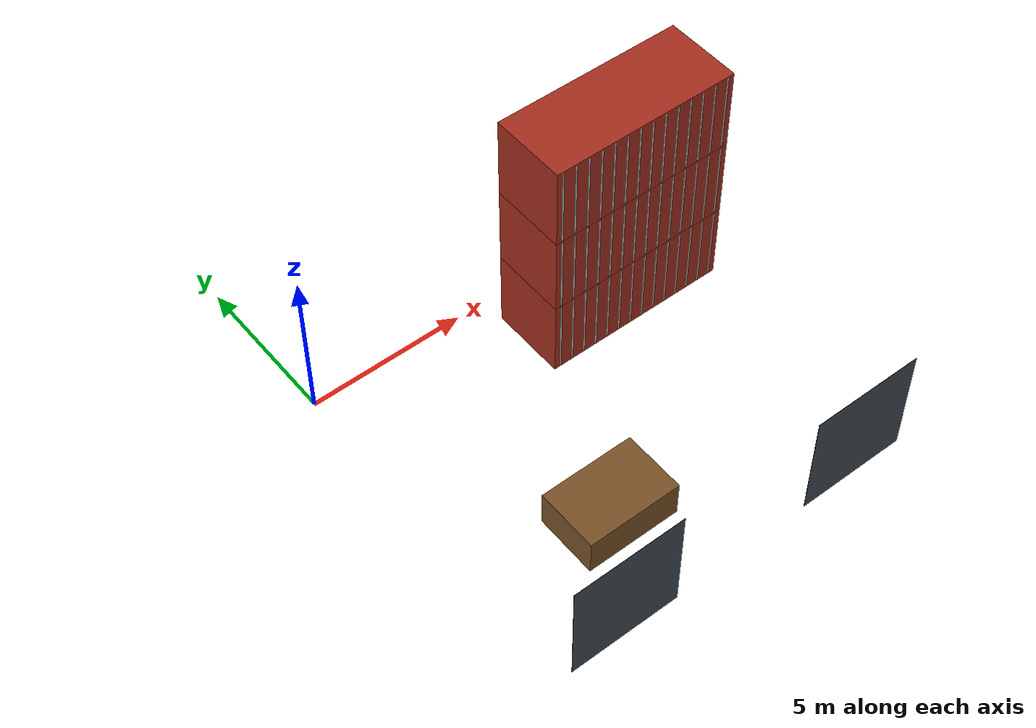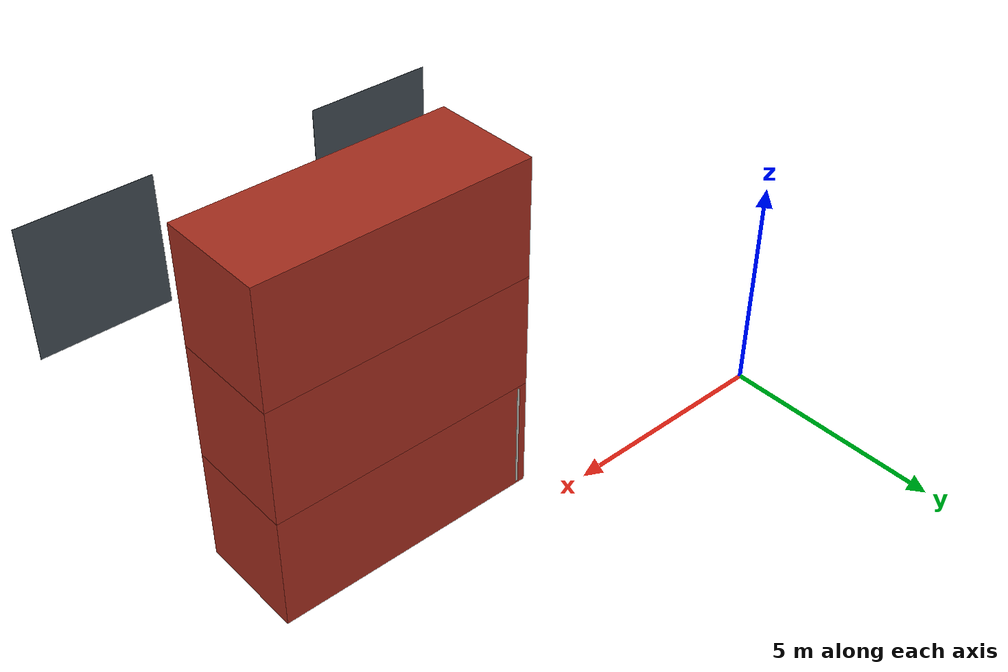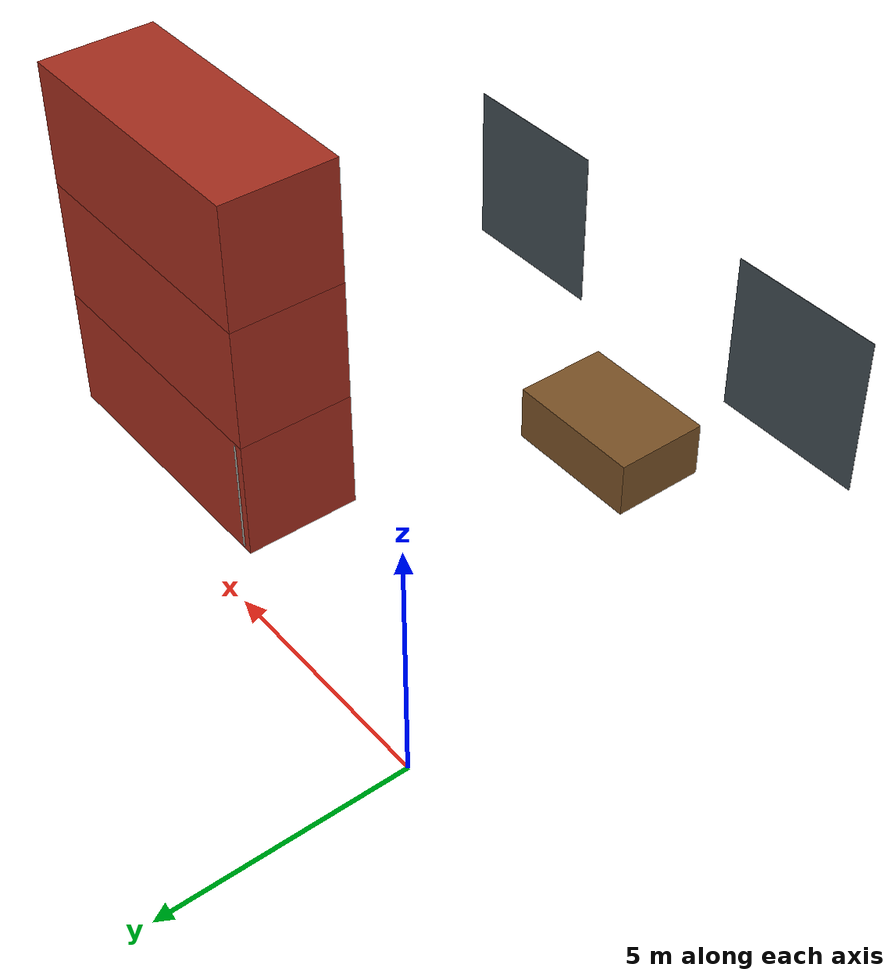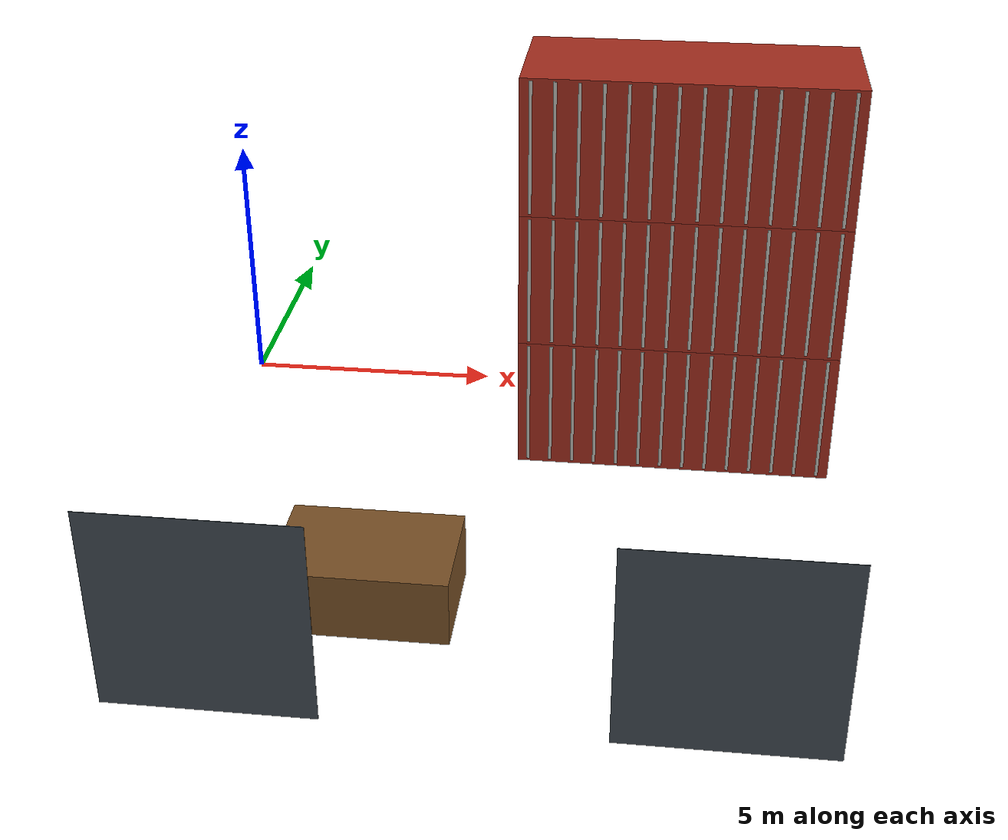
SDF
<sdf version="1.9">
 <world name="iris_mppi_industrial_yard">
  <model name="south_loading_door_2">
   <static>true</static>
   <pose>2 -10.995 1.8 0 0 0</pose>
   <link name="body">
    <visual name="visual">
     <geometry><box><size>3.5 0.01 3.6</size></box></geometry>
     <material><ambient>.25 .29 .32 1</ambient><diffuse>.25 .29 .32 1</diffuse></material>
    </visual>
   </link>
  </model>
  <model name="south_loading_door_10">
   <static>true</static>
   <pose>10 -10.995 1.8 0 0 0</pose>
   <link name="body">
    <visual name="visual">
     <geometry><box><size>3.5 0.01 3.6</size></box></geometry>
     <material><ambient>.25 .29 .32 1</ambient><diffuse>.25 .29 .32 1</diffuse></material>
    </visual>
   </link>
  </model>
  <model name="container_0_0">
   <static>true</static>
   <pose>9 -2 1.3 0 0 0</pose>
   <link name="body">
    <collision name="collision"><geometry><box><size>6 2.44 2.6</size></box></geometry></collision>
    <visual name="visual">
     <geometry><box><size>6 2.44 2.6</size></box></geometry>
     <material><ambient>.65 .18 .12 1</ambient><diffuse>.65 .18 .12 1</diffuse></material>
    </visual>
   </link>
  </model>
  <model name="rib_0_0_0_-1">
   <static>true</static>
   <pose>6.2 -3.218 1.3 0 0 0</pose>
   <link name="body">
    <visual name="visual">
     <geometry><box><size>0.06 0.008 2.5</size></box></geometry>
     <material><ambient>.75 .75 .72 1</ambient><diffuse>.75 .75 .72 1</diffuse></material>
    </visual>
   </link>
  </model>
  <model name="rib_0_0_0_1">
   <static>true</static>
   <pose>6.2 -0.782 1.3 0 0 0</pose>
   <link name="body">
    <visual name="visual">
     <geometry><box><size>0.06 0.008 2.5</size></box></geometry>
     <material><ambient>.75 .75 .72 1</ambient><diffuse>.75 .75 .72 1</diffuse></material>
    </visual>
   </link>
  </model>
  <model name="rib_0_0_1_-1">
   <static>true</static>
   <pose>6.63 -3.218 1.3 0 0 0</pose>
   <link name="body">
    <visual name="visual">
     <geometry><box><size>0.06 0.008 2.5</size></box></geometry>
     <material><ambient>.75 .75 .72 1</ambient><diffuse>.75 .75 .72 1</diffuse></material>
    </visual>
   </link>
  </model>
  <model name="rib_0_0_2_-1">
   <static>true</static>
   <pose>7.0600000000000005 -3.218 1.3 0 0 0</pose>
   <link name="body">
    <visual name="visual">
     <geometry><box><size>0.06 0.008 2.5</size></box></geometry>
     <material><ambient>.75 .75 .72 1</ambient><diffuse>.75 .75 .72 1</diffuse></material>
    </visual>
   </link>
  </model>
  <model name="rib_0_0_3_-1">
   <static>true</static>
   <pose>7.49 -3.218 1.3 0 0 0</pose>
   <link name="body">
    <visual name="visual">
     <geometry><box><size>0.06 0.008 2.5</size></box></geometry>
     <material><ambient>.75 .75 .72 1</ambient><diffuse>.75 .75 .72 1</diffuse></material>
    </visual>
   </link>
  </model>
  <model name="rib_0_0_4_-1">
   <static>true</static>
   <pose>7.92 -3.218 1.3 0 0 0</pose>
   <link name="body">
    <visual name="visual">
     <geometry><box><size>0.06 0.008 2.5</size></box></geometry>
     <material><ambient>.75 .75 .72 1</ambient><diffuse>.75 .75 .72 1</diffuse></material>
    </visual>
   </link>
  </model>
  <model name="rib_0_0_5_-1">
   <static>true</static>
   <pose>8.35 -3.218 1.3 0 0 0</pose>
   <link name="body">
    <visual name="visual">
     <geometry><box><size>0.06 0.008 2.5</size></box></geometry>
     <material><ambient>.75 .75 .72 1</ambient><diffuse>.75 .75 .72 1</diffuse></material>
    </visual>
   </link>
  </model>
  <model name="rib_0_0_6_-1">
   <static>true</static>
   <pose>8.780000000000001 -3.218 1.3 0 0 0</pose>
   <link name="body">
    <visual name="visual">
     <geometry><box><size>0.06 0.008 2.5</size></box></geometry>
     <material><ambient>.75 .75 .72 1</ambient><diffuse>.75 .75 .72 1</diffuse></material>
    </visual>
   </link>
  </model>
  <model name="rib_0_0_7_-1">
   <static>true</static>
   <pose>9.21 -3.218 1.3 0 0 0</pose>
   <link name="body">
    <visual name="visual">
     <geometry><box><size>0.06 0.008 2.5</size></box></geometry>
     <material><ambient>.75 .75 .72 1</ambient><diffuse>.75 .75 .72 1</diffuse></material>
    </visual>
   </link>
  </model>
  <model name="rib_0_0_8_-1">
   <static>true</static>
   <pose>9.64 -3.218 1.3 0 0 0</pose>
   <link name="body">
    <visual name="visual">
     <geometry><box><size>0.06 0.008 2.5</size></box></geometry>
     <material><ambient>.75 .75 .72 1</ambient><diffuse>.75 .75 .72 1</diffuse></material>
    </visual>
   </link>
  </model>
  <model name="rib_0_0_9_-1">
   <static>true</static>
   <pose>10.07 -3.218 1.3 0 0 0</pose>
   <link name="body">
    <visual name="visual">
     <geometry><box><size>0.06 0.008 2.5</size></box></geometry>
     <material><ambient>.75 .75 .72 1</ambient><diffuse>.75 .75 .72 1</diffuse></material>
    </visual>
   </link>
  </model>
  <model name="rib_0_0_10_-1">
   <static>true</static>
   <pose>10.5 -3.218 1.3 0 0 0</pose>
   <link name="body">
    <visual name="visual">
     <geometry><box><size>0.06 0.008 2.5</size></box></geometry>
     <material><ambient>.75 .75 .72 1</ambient><diffuse>.75 .75 .72 1</diffuse></material>
    </visual>
   </link>
  </model>
  <model name="rib_0_0_11_-1">
   <static>true</static>
   <pose>10.93 -3.218 1.3 0 0 0</pose>
   <link name="body">
    <visual name="visual">
     <geometry><box><size>0.06 0.008 2.5</size></box></geometry>
     <material><ambient>.75 .75 .72 1</ambient><diffuse>.75 .75 .72 1</diffuse></material>
    </visual>
   </link>
  </model>
  <model name="rib_0_0_12_-1">
   <static>true</static>
   <pose>11.36 -3.218 1.3 0 0 0</pose>
   <link name="body">
    <visual name="visual">
     <geometry><box><size>0.06 0.008 2.5</size></box></geometry>
     <material><ambient>.75 .75 .72 1</ambient><diffuse>.75 .75 .72 1</diffuse></material>
    </visual>
   </link>
  </model>
  <model name="rib_0_0_13_-1">
   <static>true</static>
   <pose>11.79 -3.218 1.3 0 0 0</pose>
   <link name="body">
    <visual name="visual">
     <geometry><box><size>0.06 0.008 2.5</size></box></geometry>
     <material><ambient>.75 .75 .72 1</ambient><diffuse>.75 .75 .72 1</diffuse></material>
    </visual>
   </link>
  </model>
  <model name="container_0_1">
   <static>true</static>
   <pose>9 -2 3.9000000000000004 0 0 0</pose>
   <link name="body">
    <collision name="collision"><geometry><box><size>6 2.44 2.6</size></box></geometry></collision>
    <visual name="visual">
     <geometry><box><size>6 2.44 2.6</size></box></geometry>
     <material><ambient>.65 .18 .12 1</ambient><diffuse>.65 .18 .12 1</diffuse></material>
    </visual>
   </link>
  </model>
  <model name="rib_0_1_0_-1">
   <static>true</static>
   <pose>6.2 -3.218 3.9000000000000004 0 0 0</pose>
   <link name="body">
    <visual name="visual">
     <geometry><box><size>0.06 0.008 2.5</size></box></geometry>
     <material><ambient>.75 .75 .72 1</ambient><diffuse>.75 .75 .72 1</diffuse></material>
    </visual>
   </link>
  </model>
  <model name="rib_0_1_1_-1">
   <static>true</static>
   <pose>6.63 -3.218 3.9000000000000004 0 0 0</pose>
   <link name="body">
    <visual name="visual">
     <geometry><box><size>0.06 0.008 2.5</size></box></geometry>
     <material><ambient>.75 .75 .72 1</ambient><diffuse>.75 .75 .72 1</diffuse></material>
    </visual>
   </link>
  </model>
  <model name="rib_0_1_2_-1">
   <static>true</static>
   <pose>7.0600000000000005 -3.218 3.9000000000000004 0 0 0</pose>
   <link name="body">
    <visual name="visual">
     <geometry><box><size>0.06 0.008 2.5</size></box></geometry>
     <material><ambient>.75 .75 .72 1</ambient><diffuse>.75 .75 .72 1</diffuse></material>
    </visual>
   </link>
  </model>
  <model name="rib_0_1_3_-1">
   <static>true</static>
   <pose>7.49 -3.218 3.9000000000000004 0 0 0</pose>
   <link name="body">
    <visual name="visual">
     <geometry><box><size>0.06 0.008 2.5</size></box></geometry>
     <material><ambient>.75 .75 .72 1</ambient><diffuse>.75 .75 .72 1</diffuse></material>
    </visual>
   </link>
  </model>
  <model name="rib_0_1_4_-1">
   <static>true</static>
   <pose>7.92 -3.218 3.9000000000000004 0 0 0</pose>
   <link name="body">
    <visual name="visual">
     <geometry><box><size>0.06 0.008 2.5</size></box></geometry>
     <material><ambient>.75 .75 .72 1</ambient><diffuse>.75 .75 .72 1</diffuse></material>
    </visual>
   </link>
  </model>
  <model name="rib_0_1_5_-1">
   <static>true</static>
   <pose>8.35 -3.218 3.9000000000000004 0 0 0</pose>
   <link name="body">
    <visual name="visual">
     <geometry><box><size>0.06 0.008 2.5</size></box></geometry>
     <material><ambient>.75 .75 .72 1</ambient><diffuse>.75 .75 .72 1</diffuse></material>
    </visual>
   </link>
  </model>
  <model name="rib_0_1_6_-1">
   <static>true</static>
   <pose>8.780000000000001 -3.218 3.9000000000000004 0 0 0</pose>
   <link name="body">
    <visual name="visual">
     <geometry><box><size>0.06 0.008 2.5</size></box></geometry>
     <material><ambient>.75 .75 .72 1</ambient><diffuse>.75 .75 .72 1</diffuse></material>
    </visual>
   </link>
  </model>
  <model name="rib_0_1_7_-1">
   <static>true</static>
   <pose>9.21 -3.218 3.9000000000000004 0 0 0</pose>
   <link name="body">
    <visual name="visual">
     <geometry><box><size>0.06 0.008 2.5</size></box></geometry>
     <material><ambient>.75 .75 .72 1</ambient><diffuse>.75 .75 .72 1</diffuse></material>
    </visual>
   </link>
  </model>
  <model name="rib_0_1_8_-1">
   <static>true</static>
   <pose>9.64 -3.218 3.9000000000000004 0 0 0</pose>
   <link name="body">
    <visual name="visual">
     <geometry><box><size>0.06 0.008 2.5</size></box></geometry>
     <material><ambient>.75 .75 .72 1</ambient><diffuse>.75 .75 .72 1</diffuse></material>
    </visual>
   </link>
  </model>
  <model name="rib_0_1_9_-1">
   <static>true</static>
   <pose>10.07 -3.218 3.9000000000000004 0 0 0</pose>
   <link name="body">
    <visual name="visual">
     <geometry><box><size>0.06 0.008 2.5</size></box></geometry>
     <material><ambient>.75 .75 .72 1</ambient><diffuse>.75 .75 .72 1</diffuse></material>
    </visual>
   </link>
  </model>
  <model name="rib_0_1_10_-1">
   <static>true</static>
   <pose>10.5 -3.218 3.9000000000000004 0 0 0</pose>
   <link name="body">
    <visual name="visual">
     <geometry><box><size>0.06 0.008 2.5</size></box></geometry>
     <material><ambient>.75 .75 .72 1</ambient><diffuse>.75 .75 .72 1</diffuse></material>
    </visual>
   </link>
  </model>
  <model name="rib_0_1_11_-1">
   <static>true</static>
   <pose>10.93 -3.218 3.9000000000000004 0 0 0</pose>
   <link name="body">
    <visual name="visual">
     <geometry><box><size>0.06 0.008 2.5</size></box></geometry>
     <material><ambient>.75 .75 .72 1</ambient><diffuse>.75 .75 .72 1</diffuse></material>
    </visual>
   </link>
  </model>
  <model name="rib_0_1_12_-1">
   <static>true</static>
   <pose>11.36 -3.218 3.9000000000000004 0 0 0</pose>
   <link name="body">
    <visual name="visual">
     <geometry><box><size>0.06 0.008 2.5</size></box></geometry>
     <material><ambient>.75 .75 .72 1</ambient><diffuse>.75 .75 .72 1</diffuse></material>
    </visual>
   </link>
  </model>
  <model name="rib_0_1_13_-1">
   <static>true</static>
   <pose>11.79 -3.218 3.9000000000000004 0 0 0</pose>
   <link name="body">
    <visual name="visual">
     <geometry><box><size>0.06 0.008 2.5</size></box></geometry>
     <material><ambient>.75 .75 .72 1</ambient><diffuse>.75 .75 .72 1</diffuse></material>
    </visual>
   </link>
  </model>
  <model name="container_0_2">
   <static>true</static>
   <pose>9 -2 6.5 0 0 0</pose>
   <link name="body">
    <collision name="collision"><geometry><box><size>6 2.44 2.6</size></box></geometry></collision>
    <visual name="visual">
     <geometry><box><size>6 2.44 2.6</size></box></geometry>
     <material><ambient>.65 .18 .12 1</ambient><diffuse>.65 .18 .12 1</diffuse></material>
    </visual>
   </link>
  </model>
  <model name="rib_0_2_0_-1">
   <static>true</static>
   <pose>6.2 -3.218 6.5 0 0 0</pose>
   <link name="body">
    <visual name="visual">
     <geometry><box><size>0.06 0.008 2.5</size></box></geometry>
     <material><ambient>.75 .75 .72 1</ambient><diffuse>.75 .75 .72 1</diffuse></material>
    </visual>
   </link>
  </model>
  <model name="rib_0_2_1_-1">
   <static>true</static>
   <pose>6.63 -3.218 6.5 0 0 0</pose>
   <link name="body">
    <visual name="visual">
     <geometry><box><size>0.06 0.008 2.5</size></box></geometry>
     <material><ambient>.75 .75 .72 1</ambient><diffuse>.75 .75 .72 1</diffuse></material>
    </visual>
   </link>
  </model>
  <model name="rib_0_2_2_-1">
   <static>true</static>
   <pose>7.0600000000000005 -3.218 6.5 0 0 0</pose>
   <link name="body">
    <visual name="visual">
     <geometry><box><size>0.06 0.008 2.5</size></box></geometry>
     <material><ambient>.75 .75 .72 1</ambient><diffuse>.75 .75 .72 1</diffuse></material>
    </visual>
   </link>
  </model>
  <model name="rib_0_2_3_-1">
   <static>true</static>
   <pose>7.49 -3.218 6.5 0 0 0</pose>
   <link name="body">
    <visual name="visual">
     <geometry><box><size>0.06 0.008 2.5</size></box></geometry>
     <material><ambient>.75 .75 .72 1</ambient><diffuse>.75 .75 .72 1</diffuse></material>
    </visual>
   </link>
  </model>
  <model name="rib_0_2_4_-1">
   <static>true</static>
   <pose>7.92 -3.218 6.5 0 0 0</pose>
   <link name="body">
    <visual name="visual">
     <geometry><box><size>0.06 0.008 2.5</size></box></geometry>
     <material><ambient>.75 .75 .72 1</ambient><diffuse>.75 .75 .72 1</diffuse></material>
    </visual>
   </link>
  </model>
  <model name="rib_0_2_5_-1">
   <static>true</static>
   <pose>8.35 -3.218 6.5 0 0 0</pose>
   <link name="body">
    <visual name="visual">
     <geometry><box><size>0.06 0.008 2.5</size></box></geometry>
     <material><ambient>.75 .75 .72 1</ambient><diffuse>.75 .75 .72 1</diffuse></material>
    </visual>
   </link>
  </model>
  <model name="rib_0_2_6_-1">
   <static>true</static>
   <pose>8.780000000000001 -3.218 6.5 0 0 0</pose>
   <link name="body">
    <visual name="visual">
     <geometry><box><size>0.06 0.008 2.5</size></box></geometry>
     <material><ambient>.75 .75 .72 1</ambient><diffuse>.75 .75 .72 1</diffuse></material>
    </visual>
   </link>
  </model>
  <model name="rib_0_2_7_-1">
   <static>true</static>
   <pose>9.21 -3.218 6.5 0 0 0</pose>
   <link name="body">
    <visual name="visual">
     <geometry><box><size>0.06 0.008 2.5</size></box></geometry>
     <material><ambient>.75 .75 .72 1</ambient><diffuse>.75 .75 .72 1</diffuse></material>
    </visual>
   </link>
  </model>
  <model name="rib_0_2_8_-1">
   <static>true</static>
   <pose>9.64 -3.218 6.5 0 0 0</pose>
   <link name="body">
    <visual name="visual">
     <geometry><box><size>0.06 0.008 2.5</size></box></geometry>
     <material><ambient>.75 .75 .72 1</ambient><diffuse>.75 .75 .72 1</diffuse></material>
    </visual>
   </link>
  </model>
  <model name="rib_0_2_9_-1">
   <static>true</static>
   <pose>10.07 -3.218 6.5 0 0 0</pose>
   <link name="body">
    <visual name="visual">
     <geometry><box><size>0.06 0.008 2.5</size></box></geometry>
     <material><ambient>.75 .75 .72 1</ambient><diffuse>.75 .75 .72 1</diffuse></material>
    </visual>
   </link>
  </model>
  <model name="rib_0_2_10_-1">
   <static>true</static>
   <pose>10.5 -3.218 6.5 0 0 0</pose>
   <link name="body">
    <visual name="visual">
     <geometry><box><size>0.06 0.008 2.5</size></box></geometry>
     <material><ambient>.75 .75 .72 1</ambient><diffuse>.75 .75 .72 1</diffuse></material>
    </visual>
   </link>
  </model>
  <model name="rib_0_2_11_-1">
   <static>true</static>
   <pose>10.93 -3.218 6.5 0 0 0</pose>
   <link name="body">
    <visual name="visual">
     <geometry><box><size>0.06 0.008 2.5</size></box></geometry>
     <material><ambient>.75 .75 .72 1</ambient><diffuse>.75 .75 .72 1</diffuse></material>
    </visual>
   </link>
  </model>
  <model name="rib_0_2_12_-1">
   <static>true</static>
   <pose>11.36 -3.218 6.5 0 0 0</pose>
   <link name="body">
    <visual name="visual">
     <geometry><box><size>0.06 0.008 2.5</size></box></geometry>
     <material><ambient>.75 .75 .72 1</ambient><diffuse>.75 .75 .72 1</diffuse></material>
    </visual>
   </link>
  </model>
  <model name="rib_0_2_13_-1">
   <static>true</static>
   <pose>11.79 -3.218 6.5 0 0 0</pose>
   <link name="body">
    <visual name="visual">
     <geometry><box><size>0.06 0.008 2.5</size></box></geometry>
     <material><ambient>.75 .75 .72 1</ambient><diffuse>.75 .75 .72 1</diffuse></material>
    </visual>
   </link>
  </model>
  <model name="loading_pallets">
   <static>true</static>
   <pose>4 -8 0.6 0 0 0</pose>
   <link name="body">
    <collision name="collision"><geometry><box><size>3 2 1.2</size></box></geometry></collision>
    <visual name="visual">
     <geometry><box><size>3 2 1.2</size></box></geometry>
     <material><ambient>.48 .32 .15 1</ambient><diffuse>.48 .32 .15 1</diffuse></material>
    </visual>
   </link>
  </model>
 </world>
</sdf>
